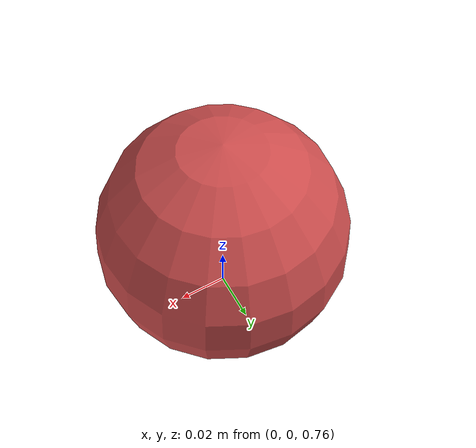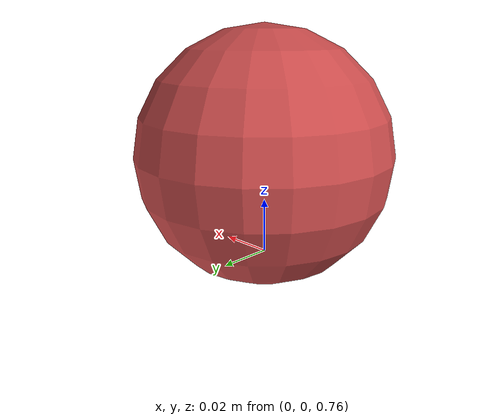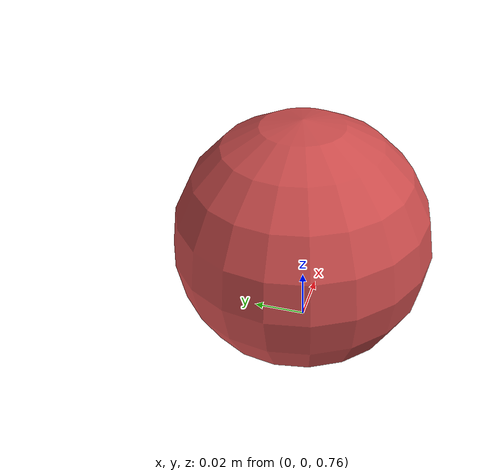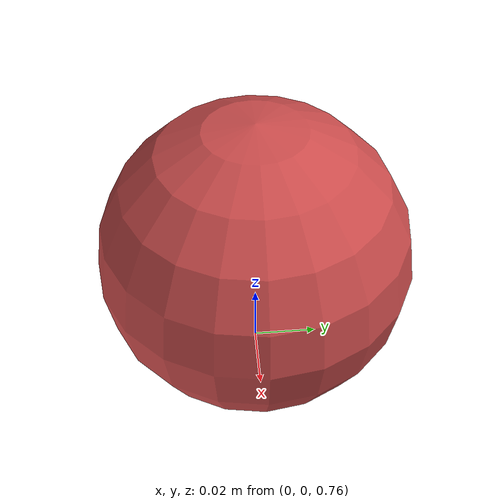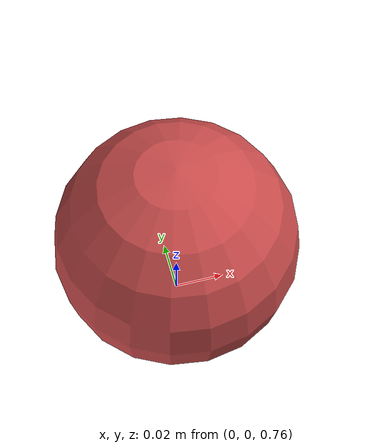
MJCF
<mujoco model="throw_001">
  <option timestep="0.001" gravity="0 0 -9.81"/>

  <visual>
    <headlight ambient="0.5 0.5 0.5"/>
  </visual>

  <asset>
    <texture name="grid" type="2d" builtin="checker" width="512" height="512" rgb1="0.2 0.3 0.4" rgb2="0.3 0.4 0.5"/>
    <material name="grid" texture="grid" texrepeat="1 1" reflectance="0.2"/>
    <material name="finger" rgba="0.8 0.3 0.3 1.0"/>
  </asset>

  <worldbody>
    <!-- Ground plane -->
    <geom name="floor" type="plane" size="2 2 0.1" material="grid"
          condim="6" friction="0.4660706640847799 0.005 0.0001" solref="0.02 1.809397082508008"/>

    <!-- Sphere -->
    <body name="fingertip" pos="0 0 0.7976979300653759">
      <freejoint/>
      <geom name="finger" type="sphere" size="0.047076462516781506" mass="0.2406035211400288" material="finger"
            condim="6" friction="0.4660706640847799 0.005 0.0001" solref="0.02 1.809397082508008"/>
      <site name="contact_site" pos="0 0 0" size="0.001"/>
    </body>
  </worldbody>

  <sensor>
    <touch name="finger_touch" site="contact_site"/>
    <framepos name="finger_pos" objtype="site" objname="contact_site"/>
    <framequat name="finger_quat" objtype="site" objname="contact_site"/>
    <framelinvel name="finger_vel" objtype="site" objname="contact_site"/>
  </sensor>
</mujoco>
